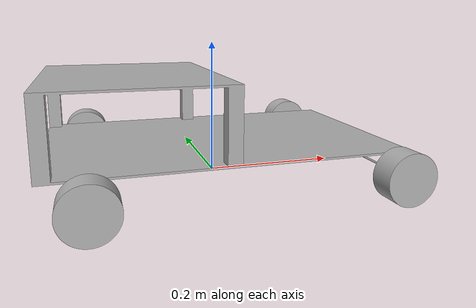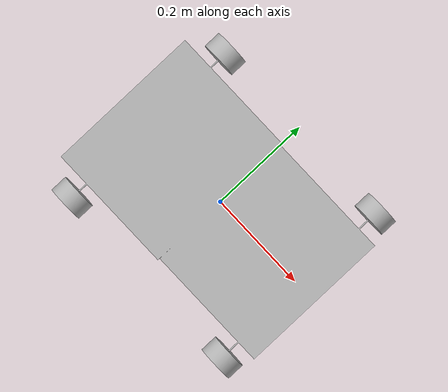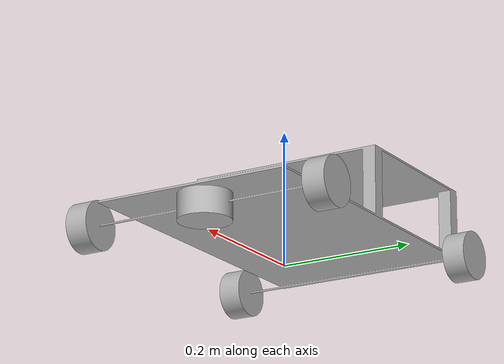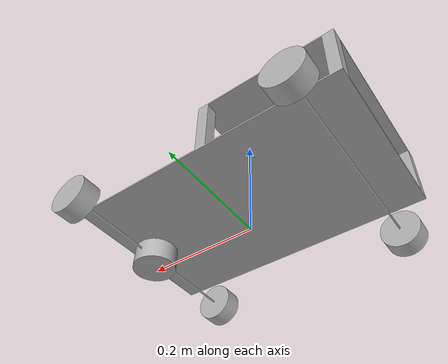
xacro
<?xml version="1.0" ?>
<robot name="robo_urdf" xmlns:xacro="http://www.ros.org/wiki/xacro">

<xacro:include filename="materials.xacro" />
<xacro:include filename="robo_urdf.trans" />
<xacro:include filename="robo_urdf.gazebo" />

<link name="base_link">
  <inertial>
    <origin xyz="-0.057241496507008716 1.6107174459284387e-16 0.038788164466744095" rpy="0 0 0"/>
    <mass value="6.593369912649838"/>
    <inertia ixx="0.078757" iyy="0.140572" izz="0.191395" ixy="0.0" iyz="0.0" ixz="0.01676"/>
  </inertial>
  <visual>
    <origin xyz="0 0 0.05" rpy="0 0 0"/>
    <geometry>
      <mesh filename="package://robo_urdf_description/meshes/base_link.stl" scale="0.001 0.001 0.001"/>
    </geometry>
    <material name="silver"/>
  </visual>
  <collision>
    <origin xyz="0 0 0.05" rpy="0 0 0"/>
    <geometry>
      <mesh filename="package://robo_urdf_description/meshes/base_link.stl" scale="0.001 0.001 0.001"/>
    </geometry>
  </collision>
</link>

<link name="lidar_link_1">
  <inertial>
    <origin xyz="0.0 -6.2841686470098095e-18 -0.019424999999999998" rpy="0 0 0"/>
    <mass value="1.4201427845819121"/>
    <inertia ixx="0.000705" iyy="0.000705" izz="0.001053" ixy="-0.0" iyz="-0.0" ixz="0.0"/>
  </inertial>
  <visual>
    <origin xyz="-0.0 -0.0 0.05" rpy="0 0 0"/>
    <geometry>
      <mesh filename="package://robo_urdf_description/meshes/lidar_link_1.stl" scale="0.001 0.001 0.001"/>
    </geometry>
    <material name="silver"/>
  </visual>
  <collision>
    <origin xyz="-0.0 -0.0 0.05" rpy="0 0 0"/>
    <geometry>
      <mesh filename="package://robo_urdf_description/meshes/lidar_link_1.stl" scale="0.001 0.001 0.001"/>
    </geometry>
  </collision>
</link>

<link name="wheel_front_left_1">
  <inertial>
    <origin xyz="3.1143427281499214e-09 -0.01699999999999996 -2.6822087606515055e-10" rpy="0 0 0"/>
    <mass value="1.0866844386990773"/>
    <inertia ixx="0.000457" iyy="0.000704" izz="0.000457" ixy="-0.0" iyz="0.0" ixz="-0.0"/>
  </inertial>
  <visual>
    <origin xyz="0 0 0.05" rpy="0 0 0"/>
    <geometry>
      <mesh filename="package://robo_urdf_description/meshes/wheel_front_left_1.stl" scale="0.001 0.001 0.001"/>
    </geometry>
    <material name="silver"/>
  </visual>
  <collision>
    <origin xyz="0 0 0.05" rpy="0 0 0"/>
    <geometry>
      <mesh filename="package://robo_urdf_description/meshes/wheel_front_left_1.stl" scale="0.001 0.001 0.001"/>
    </geometry>
  </collision>
</link>

<link name="wheel_rear_left_1">
  <inertial>
    <origin xyz="-2.831220646815069e-09 -0.01699999999999996 -2.682208725957036e-10" rpy="0 0 0"/>
    <mass value="1.0866844386990773"/>
    <inertia ixx="0.000457" iyy="0.000704" izz="0.000457" ixy="0.0" iyz="0.0" ixz="-0.0"/>
  </inertial>
  <visual>
    <origin xyz="0 0 0.05" rpy="0 0 0"/>
    <geometry>
      <mesh filename="package://robo_urdf_description/meshes/wheel_rear_left_1.stl" scale="0.001 0.001 0.001"/>
    </geometry>
    <material name="silver"/>
  </visual>
  <collision>
    <origin xyz="0 0 0.05" rpy="0 0 0"/>
    <geometry>
      <mesh filename="package://robo_urdf_description/meshes/wheel_rear_left_1.stl" scale="0.001 0.001 0.001"/>
    </geometry>
  </collision>
</link>

<link name="wheel_rear_right_1">
  <inertial>
    <origin xyz="-2.8312206190594935e-09 0.017000000000000015 -2.682208725957036e-10" rpy="0 0 0"/>
    <mass value="1.0866844386990773"/>
    <inertia ixx="0.000457" iyy="0.000704" izz="0.000457" ixy="0.0" iyz="0.0" ixz="-0.0"/>
  </inertial>
  <visual>
    <origin xyz="0 0 0.05" rpy="0 0 0"/>
    <geometry>
      <mesh filename="package://robo_urdf_description/meshes/wheel_rear_right_1.stl" scale="0.001 0.001 0.001"/>
    </geometry>
    <material name="silver"/>
  </visual>
  <collision>
    <origin xyz="0 0 0.05" rpy="0 0 0"/>
    <geometry>
      <mesh filename="package://robo_urdf_description/meshes/wheel_rear_right_1.stl" scale="0.001 0.001 0.001"/>
    </geometry>
  </collision>
</link>

<link name="wheel_front_right_1">
  <inertial>
    <origin xyz="3.1143427281499214e-09 0.017000000000000015 -2.6822087606515055e-10" rpy="0 0 0"/>
    <mass value="1.0866844386990773"/>
    <inertia ixx="0.000457" iyy="0.000704" izz="0.000457" ixy="0.0" iyz="0.0" ixz="-0.0"/>
  </inertial>
  <visual>
    <origin xyz="0 0 0.05" rpy="0 0 0"/>
    <geometry>
      <mesh filename="package://robo_urdf_description/meshes/wheel_front_right_1.stl" scale="0.001 0.001 0.001"/>
    </geometry>
    <material name="silver"/>
  </visual>
  <collision>
    <origin xyz="0 0 0.05" rpy="0 0 0"/>
    <geometry>
      <mesh filename="package://robo_urdf_description/meshes/wheel_front_right_1.stl" scale="0.001 0.001 0.001"/>
    </geometry>
  </collision>
</link>

<joint name="Rigido" type="fixed">
  <origin xyz="0.21 0.0 0.06" rpy="0 3.14159 0"/>
  <parent link="base_link"/>
  <child link="lidar_link_1"/>
</joint>

<joint name="Revolucionar 2" type="continuous">
  <origin xyz="0.209 -0.174 -0.018" rpy="0 0 0"/>
  <parent link="base_link"/>
  <child link="wheel_front_left_1"/>
  <axis xyz="0.0 -1.0 0.0"/>
</joint>

<joint name="Revolucionar 3" type="continuous">
  <origin xyz="-0.19 -0.174 -0.018" rpy="0 0 0"/>
  <parent link="base_link"/>
  <child link="wheel_rear_left_1"/>
  <axis xyz="0.0 -1.0 0.0"/>
</joint>

<joint name="Revolucionar 4" type="continuous">
  <origin xyz="-0.19 0.174 -0.018" rpy="0 0 0"/>
  <parent link="base_link"/>
  <child link="wheel_rear_right_1"/>
  <axis xyz="0.0 1.0 0.0"/>
</joint>

<joint name="Revolucionar 5" type="continuous">
  <origin xyz="0.209 0.174 -0.018" rpy="0 0 0"/>
  <parent link="base_link"/>
  <child link="wheel_front_right_1"/>
  <axis xyz="0.0 1.0 0.0"/>
</joint>

</robot>

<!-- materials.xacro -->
<robot name="robo_urdf" xmlns:xacro="http://www.ros.org/wiki/xacro" >

<material name="silver">
  <color rgba="0.700 0.700 0.700 1.000"/>
</material>

</robot>

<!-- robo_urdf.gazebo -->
<robot name="robo_urdf" xmlns:xacro="http://www.ros.org/wiki/xacro" >

<xacro:property name="body_color" value="Gazebo/Silver" />

<gazebo>
  <plugin name="control" filename="libgazebo_ros_control.so"/>
</gazebo>
<gazebo reference="base_link">
  <material>${body_color}</material>
  <mu1>0.2</mu1>
  <mu2>0.2</mu2>
  <self_collide>true</self_collide>
  <gravity>true</gravity>
</gazebo>

<gazebo reference="lidar_link_1">
  <material>${body_color}</material>
  <mu1>0.2</mu1>
  <mu2>0.2</mu2>
  <self_collide>true</self_collide>
</gazebo>

<gazebo reference="wheel_front_left_1">
  <material>${body_color}</material>
  <mu1>0.2</mu1>
  <mu2>0.2</mu2>
  <self_collide>true</self_collide>
</gazebo>

<gazebo reference="wheel_rear_left_1">
  <material>${body_color}</material>
  <mu1>0.2</mu1>
  <mu2>0.2</mu2>
  <self_collide>true</self_collide>
</gazebo>

<gazebo reference="wheel_rear_right_1">
  <material>${body_color}</material>
  <mu1>0.2</mu1>
  <mu2>0.2</mu2>
  <self_collide>true</self_collide>
</gazebo>

<gazebo reference="wheel_front_right_1">
  <material>${body_color}</material>
  <mu1>0.2</mu1>
  <mu2>0.2</mu2>
  <self_collide>true</self_collide>
</gazebo>

</robot>
